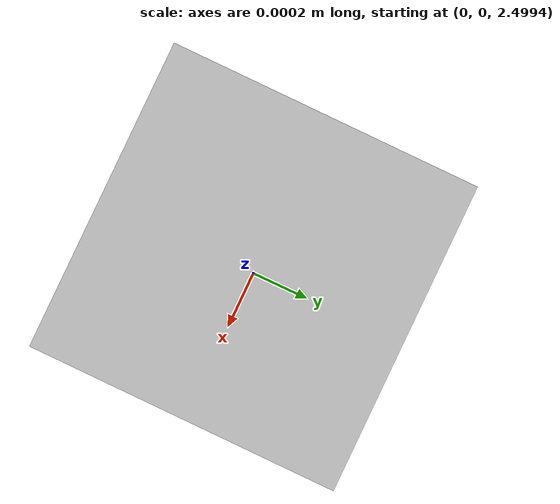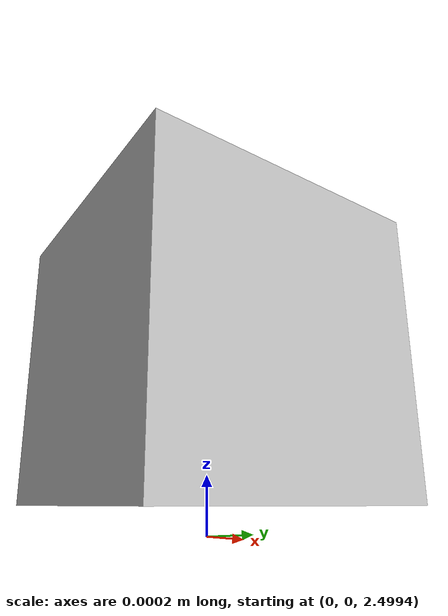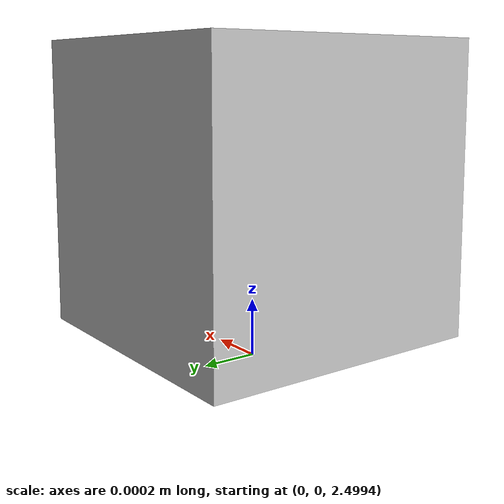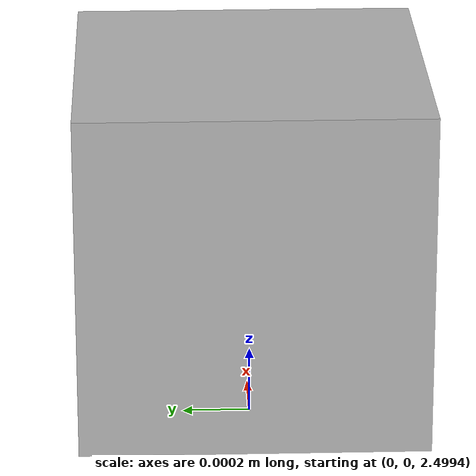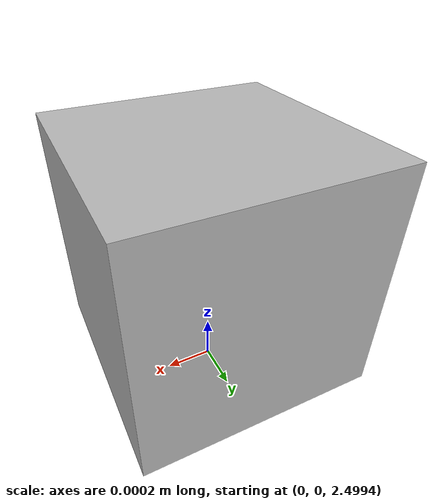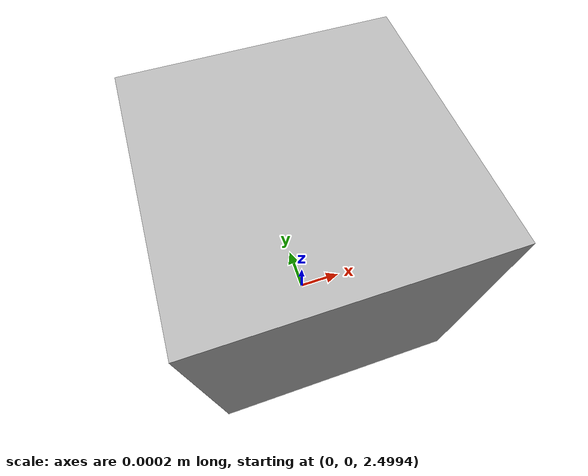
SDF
<sdf version='1.7'>
  <model name='cam_bot'>
    <joint name='world_base' type='fixed'>
      <pose relative_to='__model__'>0 0 2.5 -3.14159 1.57059 0.000507</pose>
      <parent>world</parent>
      <child>camera_link</child>
    </joint>
    <link name='camera_link'>
      <pose relative_to='world_base'>0 0 0 0 -0 0</pose>
      <inertial>
        <pose>0 0 0 0 -0 0</pose>
        <mass>1.58499</mass>
        <inertia>
          <ixx>0.01042</ixx>
          <ixy>0.001177</ixy>
          <ixz>-0.0008871</ixz>
          <iyy>0.01045</iyy>
          <iyz>0.0002226</iyz>
          <izz>0.01817</izz>
        </inertia>
      </inertial>
      <collision name='camera_link_collision'>
        <pose>0 0 0 0 -0 0</pose>
        <geometry>
          <box>
            <size>0.001 0.001 0.001</size>
          </box>
        </geometry>
        <surface>
          <contact>
            <ode/>
          </contact>
          <friction>
            <ode/>
          </friction>
        </surface>
      </collision>
      <visual name='camera_link_visual'>
        <pose>0 0 0 0 -0 0</pose>
        <geometry>
          <box>
            <size>0.001 0.001 0.001</size>
          </box>
        </geometry>
      </visual>
      <sensor name='camera' type='camera'>
        <update_rate>30</update_rate>
        <camera name='head'>
          <horizontal_fov>1.39626</horizontal_fov>
          <image>
            <width>1280</width>
            <height>720</height>
            <format>R8G8B8</format>
          </image>
          <clip>
            <near>0.02</near>
            <far>300</far>
          </clip>
          <noise>
            <type>gaussian</type>
            <mean>0</mean>
            <stddev>0.007</stddev>
          </noise>
        </camera>
        <plugin name='camera_controller' filename='libgazebo_ros_camera.so'>
          <alwaysOn>1</alwaysOn>
          <updateRate>0.0</updateRate>
          <cameraName>usb_cam</cameraName>
          <imageTopicName>image_raw</imageTopicName>
          <cameraInfoTopicName>/camera/camera_info</cameraInfoTopicName>
          <frameName>camera_link</frameName>
          <hackBaseline>0.07</hackBaseline>
          <distortionK1>0.0</distortionK1>
          <distortionK2>0.0</distortionK2>
          <distortionK3>0.0</distortionK3>
          <distortionT1>0.0</distortionT1>
          <distortionT2>0.0</distortionT2>
        </plugin>
      </sensor>
    </link>
  </model>
</sdf>
